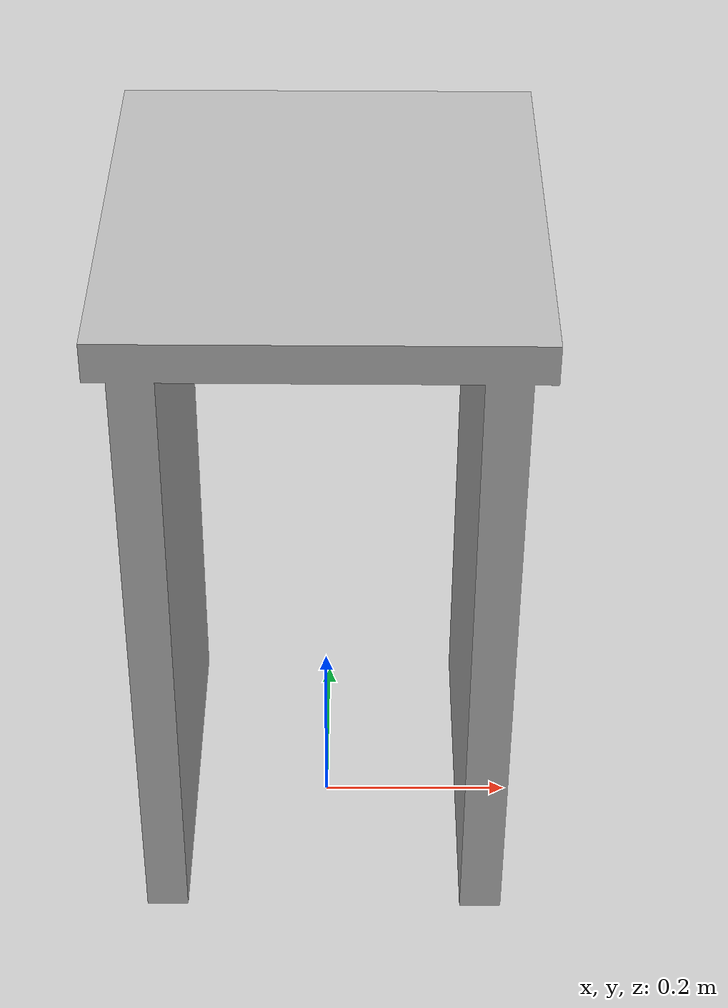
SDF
<?xml version='1.0'?>
<sdf version='1.4'>
 <model name='robot_stand'>
  <static>true</static>
  <link name='link'>
      <collision name="collision">
        <geometry>
          <mesh>
            <uri>model://robot_stand_v1/meshes/robot_stand_v1.dae</uri>
          </mesh>
        </geometry>
      </collision>
   <visual name='visual'>
    <geometry>
     <mesh>
      <uri>model://robot_stand_v1/meshes/robot_stand_v1.dae</uri>
     </mesh>
    </geometry>
   </visual>
  </link>
 </model>
</sdf>
